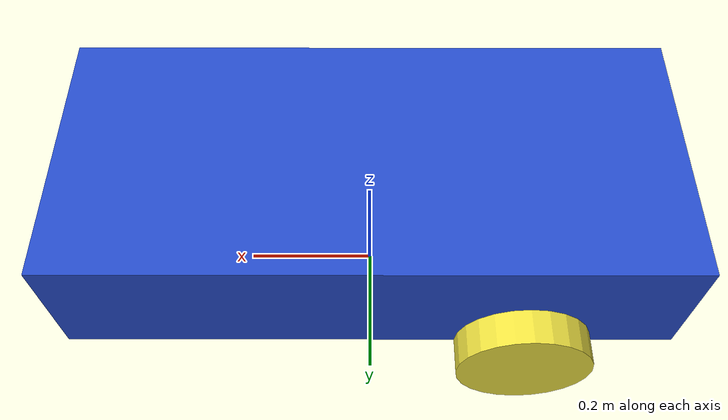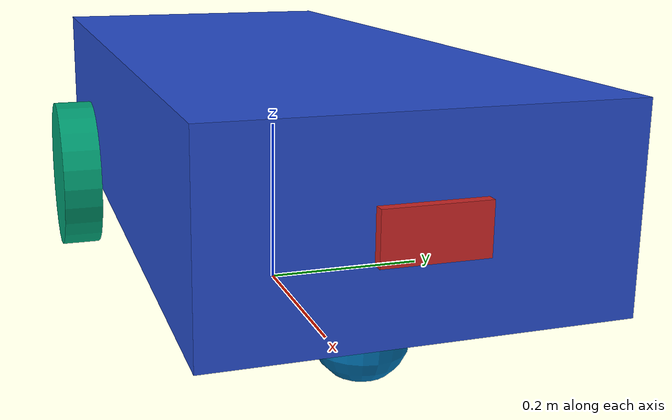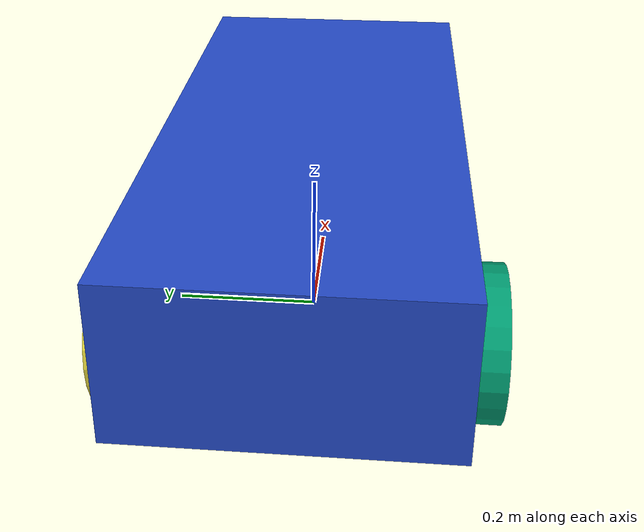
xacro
<?xml version="1.0"?>

<robot name="my_robot" xmlns:xacro="https://www.ros.org/wiki/xacro">

    <xacro:include filename="common_materials.xacro"/>
    <xacro:include filename="common_properties.urdf.xacro"/>

    <xacro:include filename="my_robot.urdf.xacro"/>
    <xacro:include filename="my_robot_gazebo_setup.xacro"/>

    <xacro:include filename="my_robot_camera.xacro"/>

</robot>

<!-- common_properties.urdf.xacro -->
<robot xmlns:xacro="https://www.ros.org/wiki/xacro">

    <xacro:macro name="box_inertia" params="m x y z o_xyz o_rpy">
        <inertial>
            <mass value="${m}"/>
            <origin xyz="${o_xyz}" rpy="${o_rpy}"/>
            <inertia ixx="${(m/12) * (y*y + z*z)}" ixy="0" ixz="0"
                     iyy="${(m/12) * (x*x + z*z)}" iyz="0"
                     izz="${(m/12) * (x*x + y*y)}" />
        </inertial>
    </xacro:macro>

    <xacro:macro name="cylinder_inertia" params="m r l o_xyz o_rpy">
        <inertial>
            <mass value="${m}"/>
            <origin xyz="${o_xyz}" rpy="${o_rpy}"/>
            <inertia ixx="${(m/12) * (3*r*r + l*l)}" ixy="0" ixz="0"
                     iyy="${(m/12) * (3*r*r + l*l)}" iyz="0"
                     izz="${(m/2) * (r*r)}" />
        </inertial>
    </xacro:macro>

    <xacro:macro name="sphere_inertia" params="m r o_xyz o_rpy">
        <inertial>
            <mass value="${m}"/>
            <origin xyz="${o_xyz}" rpy="${o_rpy}"/>
            <inertia ixx="${(2/5) * m * (r*r)}" ixy="0" ixz="0"
                     iyy="${(2/5) * m * (r*r)}" iyz="0"
                     izz="${(2/5) * m * (r*r)}" />
        </inertial>
    </xacro:macro>

</robot>

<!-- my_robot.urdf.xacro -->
<robot  xmlns:xacro="https://www.ros.org/wiki/xacro">

    <!-- ==================== Materials ==================== -->

    <!-- ==================== Veriables ==================== -->

    <xacro:property name="base_length" value="0.9"/>
    <xacro:property name="base_width" value="0.4"/>
    <xacro:property name="base_height" value="0.2"/>
    <xacro:property name="wheel_radius" value="0.1"/>
    <xacro:property name="wheel_length" value="0.05"/>
    <xacro:property name="front_wheel_radius" value="${wheel_radius/2}"/>

    <!-- ==================== Functions ==================== -->
    <xacro:macro name="wheel_link" params="prefix">
        <link name="${prefix}_wheel">
            <visual>
                <geometry>
                    <cylinder radius="${wheel_radius}" length="${wheel_length}"/>
                </geometry>
                <origin xyz="0 0 0" rpy="${pi/2.0} 0 0"/>
                <material name="flange_steel"/>
            </visual>
            <collision>
                <geometry>
                    <sphere radius="${wheel_radius}"/>
                </geometry>
                <origin xyz="0 0 0" rpy="0 0 0"/>
            </collision>

            <xacro:cylinder_inertia m="1.0" r="${wheel_radius}" l="${wheel_length}" o_xyz="0 0 0" o_rpy="${pi/2.0} 0 0" />
        </link>

    </xacro:macro>

    <!-- ==================== Links & Joints  ==================== -->

    <!-- ==================== Base Link ==================== -->
    <link name="base_link">
        <visual>
            <geometry>
                <box size="${base_length} ${base_width} ${base_height}"/>
            </geometry>
            <origin xyz="0 0 ${base_height/2}" rpy="0 0 0"/>
            <material name="blue"/>
        </visual>
        <collision>
            <geometry>
                <box size="${base_length} ${base_width} ${base_height}"/>
            </geometry>
            <origin xyz="0 0 ${base_height/2}" rpy="0 0 0"/>
        </collision>
        <xacro:box_inertia m="5.0" x="${base_length}" y="${base_width}" z="${base_height}" o_xyz="0 0 ${base_height/2}" o_rpy="0 0 0" />
    </link>

    <link name="base_footprint"/>

    <joint name="origin_link" type="fixed">
        <parent link="base_footprint"/>
        <child link="base_link"/>
        <origin xyz="0 0 ${wheel_radius}" rpy="0 0 0"/>
    </joint>

    <!-- ==================== Left Wheel ==================== -->
    <xacro:wheel_link prefix="left"/>

    <!-- Base to Left Wheel Joint -->
    <joint name="base_left_wheel_joint" type="continuous">
        <parent link="base_link"/>
        <child link="left_wheel"/>
        <origin xyz="${-base_length/4.0} ${-(base_width + wheel_length)/2} 0" rpy="0 0 0"/>
        <axis xyz="0 1 0"/>
    </joint>

    <!-- ==================== Right Wheel ==================== -->
    <xacro:wheel_link prefix="right"/>

    <!-- Base to right Wheel Joint -->
    <joint name="base_right_wheel_joint" type="continuous">
        <parent link="base_link"/>
        <child link="right_wheel"/>
        <origin xyz="${-base_length/4.0} ${(base_width + wheel_length)/2} 0" rpy="0 0 0"/>
        <axis xyz="0 1 0"/>
    </joint>

    <!-- ==================== Front Wheel ==================== -->
    <link name="front_wheel">
        <visual>
            <geometry>
                <sphere radius="${front_wheel_radius}"/>
            </geometry>
            <origin xyz="0 0 0" rpy="0 0 0"/>
            <material name="flange_steel"/>
        </visual>
        <collision>
            <geometry>
                <sphere radius="${front_wheel_radius}"/>
            </geometry>
            <origin xyz="0 0 0" rpy="0 0 0"/>
        </collision>
        <xacro:sphere_inertia m="0.5" r="${front_wheel_radius}" o_xyz="0 0 0" o_rpy="0 0 0" />
    </link>

    <!-- Base to front Wheel Joint -->
    <joint name="base_front_wheel_joint" type="continuous">
        <parent link="base_link"/>
        <child link="front_wheel"/>
        <origin xyz="${base_length/3.0} 0 ${-front_wheel_radius}" rpy="0 0 0"/>
        <axis xyz="0 1 0"/>
    </joint>

</robot>

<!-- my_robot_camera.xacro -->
<robot  xmlns:xacro="https://www.ros.org/wiki/xacro">

    <xacro:property name="camera_length" value="0.01"/>
    <xacro:property name="camera_width" value="0.1"/>
    <xacro:property name="camera_height" value="0.05"/>

    <link name = "camera_link" >
        <visual>
            <geometry>
                <box size = "${camera_length} ${camera_width} ${camera_height}"/>
            </geometry>
            <material name="laser_red"/>
        </visual>
        <collision>
            <geometry>
                <box size = "${camera_length} ${camera_width} ${camera_height}"/>
            </geometry>
        </collision>
        <xacro:box_inertia m="0.1" x="${camera_length}" y="${camera_width}" z="${camera_height}" o_xyz="0 0 0" o_rpy="0 0 0" />
    </link>

    <joint name="base_camera_joint" type="fixed">
        <parent link="base_link"/>
        <child link="camera_link"/>
        <origin xyz ="${(base_length + camera_length)/2.0} 0 ${base_height/2.0}" rpy ="0 0 0"/>
    </joint>

    <gazebo reference="camera_link">
        <sensor name="camera" type="camera">
            <camera>
                <horizontal_fov>1.3962634</horizontal_fov>
                <image>
                    <width>640</width>
                    <height>480</height>
                    <format>R8G8B8</format>
                </image>
                <clip>
                    <near>0.1</near>
                    <far>15</far>
                </clip>
                <noise>
                    <type>gaussian</type>
                    <mean>0.0</mean>
                    <stddev>0.007</stddev>
                </noise>
                <optical_frame_id>camera_link</optical_frame_id>
                <camera_info_topic>camera/camera_info</camera_info_topic>
            </camera>
            <always_on>1</always_on>
            <update_rate>20</update_rate>
            <visualize>true</visualize>
            <topic>camera/image_raw</topic>
        </sensor>
    </gazebo>

</robot>
